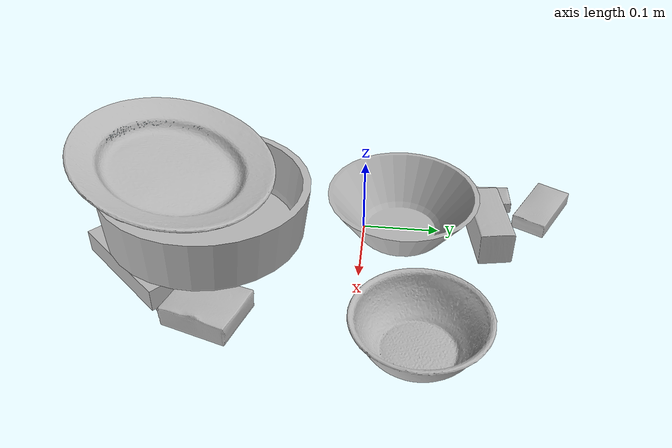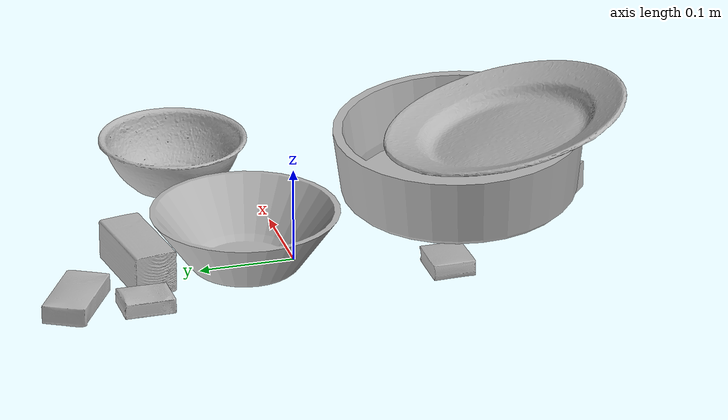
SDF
<sdf version="1.4">
  <world name="default">
    <light name="light1" type="point">
      <pose>0 0 1 0 0 0</pose>
      <diffuse>3 3 3 1</diffuse>
      <specular>3 3 3 1</specular>
    </light>
    <light name="light2" type="point">
      <pose>0 0.5 2 0 0 0</pose>
      <diffuse>1 1 1 1</diffuse>
      <specular>1 1 1 1</specular>
    </light>
    <light name="light3" type="point">
      <pose>0 0.5 2 0 0 0</pose>
      <diffuse>3 3 3 1</diffuse>
      <specular>3 3 3 1</specular>
    </light>
    <scene>
      <ambient>0.7 0.7 0.7</ambient>
    </scene>
    <model name="box1">
      <link name="link_box1">
        <collision name="default">
          <geometry>
            <mesh>
              <uri>model://jenga/collision_meshes/collision.obj</uri>
              <scale>1.0 1.0 1.0</scale>
            </mesh>
          </geometry>
          <surface>
            <friction>
              <ode>
                <mu>0.5</mu>
                <mu2>0.5</mu2>
              </ode>
            </friction>
          <contact>
        <ode>
            <max_vel>0</max_vel>
            <min_depth>0.0001</min_depth>
            <kp>1e8</kp>
        </ode>
    </contact></surface>
        </collision>
        <visual name="default">
          <geometry>
            <mesh>
              <uri>model://jenga/visual_meshes/visual.dae</uri>
              <scale>1.0 1.0 1.0</scale>
            </mesh>
          </geometry>
        </visual>
        <inertial>
          <mass>0.21843092143535614</mass>
          <pose>-2.502855807051674e-07 -0.00010250011109746993 -4.092339804628864e-05 0.0 -7.342154049184251e-07 0.0</pose>
          <inertia>
            <ixx>6.0445138e-05</ixx>
            <iyy>0.0004095746</iyy>
            <izz>0.00043725572</izz>
            <ixy>0</ixy>
            <ixz>0</ixz>
            <iyz>0</iyz>
          </inertia>
        </inertial>
      </link>
      <pose>0.11893003433942795 -0.2759746015071869 0.01500124391168356 0.0001394965550039488 -1.5990040972423662e-06 -2.316778445952206</pose>
    </model>
    <model name="box11">
      <link name="link_box11">
        <collision name="default">
          <geometry>
            <mesh>
              <uri>model://pudding_box/collision_meshes/collision.obj</uri>
              <scale>0.5 0.5 0.5</scale>
            </mesh>
          </geometry>
          <surface>
            <friction>
              <ode>
                <mu>0.5</mu>
                <mu2>0.5</mu2>
              </ode>
            </friction>
          <contact>
        <ode>
            <max_vel>0</max_vel>
            <min_depth>0.0001</min_depth>
            <kp>1e8</kp>
        </ode>
    </contact></surface>
        </collision>
        <visual name="default">
          <geometry>
            <mesh>
              <uri>model://pudding_box/visual_meshes/visual.dae</uri>
              <scale>0.5 0.5 0.5</scale>
            </mesh>
          </geometry>
        </visual>
        <inertial>
          <mass>0.04130476340651512</mass>
          <pose>0.00024474109522998333 0.00040339428232982755 -0.0002594413817860186 0.005213101341234124 -0.006603795469139562 0.020079830758209564</pose>
          <inertia>
            <ixx>1.1673226e-05</ixx>
            <iyy>7.85383e-06</iyy>
            <izz>1.723857e-05</izz>
            <ixy>0</ixy>
            <ixz>0</ixz>
            <iyz>0</iyz>
          </inertia>
        </inertial>
      </link>
      <pose>-0.06862971186637878 -0.14425979554653168 0.011053449474275112 -0.0632609644920789 -0.00800482845145009 -1.6010795928846528</pose>
    </model>
    <model name="box2">
      <link name="link_box2">
        <collision name="default">
          <geometry>
            <mesh>
              <uri>model://gelatin_box/collision_meshes/collision.obj</uri>
              <scale>1.0 1.0 1.0</scale>
            </mesh>
          </geometry>
          <surface>
            <friction>
              <ode>
                <mu>0.5</mu>
                <mu2>0.5</mu2>
              </ode>
            </friction>
          <contact>
        <ode>
            <max_vel>0</max_vel>
            <min_depth>0.0001</min_depth>
            <kp>1e8</kp>
        </ode>
    </contact></surface>
        </collision>
        <visual name="default">
          <geometry>
            <mesh>
              <uri>model://gelatin_box/visual_meshes/visual.dae</uri>
              <scale>1.0 1.0 1.0</scale>
            </mesh>
          </geometry>
        </visual>
        <inertial>
          <mass>0.24153950810432434</mass>
          <pose>0.0004319618456065655 0.00011156871914863586 -0.0003640321083366871 -0.001050371984258798 -0.004755819621622892 0.016440559472145032</pose>
          <inertia>
            <ixx>0.00017050719</ixx>
            <iyy>0.00012179239</iyy>
            <izz>0.0002595499</izz>
            <ixy>0</ixy>
            <ixz>0</ixz>
            <iyz>0</iyz>
          </inertia>
        </inertial>
      </link>
      <pose>0.1898023933172226 -0.17072807252407074 0.015433640219271183 0.0016274644256394058 -0.01947353739640718 -0.31736387699768864</pose>
    </model>
    <model name="box21">
      <link name="link_box21">
        <collision name="default">
          <geometry>
            <mesh>
              <uri>model://cracker_box/collision_meshes/collision.obj</uri>
              <scale>0.25 0.25 0.25</scale>
            </mesh>
          </geometry>
          <surface>
            <friction>
              <ode>
                <mu>0.5</mu>
                <mu2>0.5</mu2>
              </ode>
            </friction>
          <contact>
        <ode>
            <max_vel>0</max_vel>
            <min_depth>0.0001</min_depth>
            <kp>1e8</kp>
        </ode>
    </contact></surface>
        </collision>
        <visual name="default">
          <geometry>
            <mesh>
              <uri>model://cracker_box/visual_meshes/visual.dae</uri>
              <scale>0.25 0.25 0.25</scale>
            </mesh>
          </geometry>
        </visual>
        <inertial>
          <mass>0.04855586588382721</mass>
          <pose>0.00023660322767682374 6.358561222441494e-05 -0.00042573834070935845 -0.00031620783521113603 -0.01110649053142329 0.0025467954689779603</pose>
          <inertia>
            <ixx>7.719027e-06</ixx>
            <iyy>1.2745631e-05</iyy>
            <izz>1.8189185e-05</izz>
            <ixy>0</ixy>
            <ixz>0</ixz>
            <iyz>0</iyz>
          </inertia>
        </inertial>
      </link>
      <pose>-0.06672874093055725 0.17130006849765778 0.009120450355112553 -0.011788041869801598 -0.007367185534207681 1.6042087079099656</pose>
    </model>
    <model name="box3">
      <link name="link_box3">
        <collision name="default">
          <geometry>
            <mesh>
              <uri>model://wood_block/collision_meshes/collision.obj</uri>
              <scale>0.5 0.5 0.5</scale>
            </mesh>
          </geometry>
          <surface>
            <friction>
              <ode>
                <mu>0.5</mu>
                <mu2>0.5</mu2>
              </ode>
            </friction>
          <contact>
        <ode>
            <max_vel>0</max_vel>
            <min_depth>0.0001</min_depth>
            <kp>1e8</kp>
        </ode>
    </contact></surface>
        </collision>
        <visual name="default">
          <geometry>
            <mesh>
              <uri>model://wood_block/visual_meshes/visual.dae</uri>
              <scale>0.5 0.5 0.5</scale>
            </mesh>
          </geometry>
        </visual>
        <inertial>
          <mass>0.17342756688594818</mass>
          <pose>-2.906657982748584e-06 -0.000285404734313488 0.00013204291462898254 -0.052208426481931185 -0.005192696107352816 -0.006861379630616638</pose>
          <inertia>
            <ixx>5.8018082e-05</ixx>
            <iyy>0.00018327912</iyy>
            <izz>0.00018259356</izz>
            <ixy>0</ixy>
            <ixz>0</ixz>
            <iyz>0</iyz>
          </inertia>
        </inertial>
      </link>
      <pose>0.008625941351056099 0.16223876178264618 0.022629262879490852 -0.005208479087087733 0.005718668281980412 -2.9766925100951296</pose>
    </model>
    <model name="box31">
      <link name="link_box31">
        <collision name="default">
          <geometry>
            <mesh>
              <uri>model://sugar_box/collision_meshes/collision.obj</uri>
              <scale>0.5 0.5 0.5</scale>
            </mesh>
          </geometry>
          <surface>
            <friction>
              <ode>
                <mu>0.5</mu>
                <mu2>0.5</mu2>
              </ode>
            </friction>
          <contact>
        <ode>
            <max_vel>0</max_vel>
            <min_depth>0.0001</min_depth>
            <kp>1e8</kp>
        </ode>
    </contact></surface>
        </collision>
        <visual name="default">
          <geometry>
            <mesh>
              <uri>model://sugar_box/visual_meshes/visual.dae</uri>
              <scale>0.5 0.5 0.5</scale>
            </mesh>
          </geometry>
        </visual>
        <inertial>
          <mass>0.102778859436512</mass>
          <pose>0.0005171863595023751 1.924554817378521e-05 -0.00018182402709499002 -0.00040462592244169 0.0010506634051582892 0.0026153783234817013</pose>
          <inertia>
            <ixx>2.1408765e-05</ixx>
            <iyy>6.919753e-05</iyy>
            <izz>8.2837694e-05</izz>
            <ixy>0</ixy>
            <ixz>0</ixz>
            <iyz>0</iyz>
          </inertia>
        </inertial>
      </link>
      <pose>-0.04678890109062195 0.23781223595142365 0.011399302631616592 0.0007759435233233599 -0.02343281851852172 2.641774865173524</pose>
    </model>
    <model name="plate1">
      <link name="link_plate1">
        <collision name="default">
          <geometry>
            <mesh>
              <uri>model://pan_tefal/collision_meshes/collision.obj</uri>
              <scale>1.0 1.0 1.0</scale>
            </mesh>
          </geometry>
          <surface>
            <friction>
              <ode>
                <mu>0.5</mu>
                <mu2>0.5</mu2>
              </ode>
            </friction>
          <contact>
        <ode>
            <max_vel>0</max_vel>
            <min_depth>0.0001</min_depth>
            <kp>1e8</kp>
        </ode>
    </contact></surface>
        </collision>
        <visual name="default">
          <geometry>
            <mesh>
              <uri>model://pan_tefal/visual_meshes/visual.dae</uri>
              <scale>1.0 1.0 1.0</scale>
            </mesh>
          </geometry>
        </visual>
        <inertial>
          <mass>1.4199398756027222</mass>
          <pose>-0.00018002341676037759 3.278919029980898e-05 -0.00851493515074253 0.0008190238651519852 -0.0003301374854212985 -0.3318555266382279</pose>
          <inertia>
            <ixx>0.009801778</ixx>
            <iyy>0.009864969</iyy>
            <izz>0.01804318</izz>
            <ixy>0</ixy>
            <ixz>0</ixz>
            <iyz>0</iyz>
          </inertia>
        </inertial>
      </link>
      <pose>0.061206378042697906 -0.19734705984592438 0.06367231160402298 0.000913988478452088 -0.06230802651319079 -0.7390504255643955</pose>
    </model>
    <model name="bowl1">
      <link name="link_bowl1">
        <collision name="default">
          <geometry>
            <mesh>
              <uri>model://bowl/collision_meshes/collision.obj</uri>
              <scale>1.0 1.0 1.0</scale>
            </mesh>
          </geometry>
          <surface>
            <friction>
              <ode>
                <mu>0.5</mu>
                <mu2>0.5</mu2>
              </ode>
            </friction>
          <contact>
        <ode>
            <max_vel>0</max_vel>
            <min_depth>0.0001</min_depth>
            <kp>1e8</kp>
        </ode>
    </contact></surface>
        </collision>
        <visual name="default">
          <geometry>
            <mesh>
              <uri>model://bowl/visual_meshes/visual.dae</uri>
              <scale>1.0 1.0 1.0</scale>
            </mesh>
          </geometry>
        </visual>
        <inertial>
          <mass>0.10393582284450531</mass>
          <pose>0.00020445296831894666 -0.001030207728035748 -0.0008042644476518035 -0.01576405922653839 0.014546845721322095 0.7140430703653545</pose>
          <inertia>
            <ixx>0.00023874876</ixx>
            <iyy>0.00023341418</iyy>
            <izz>0.00040165734</izz>
            <ixy>0</ixy>
            <ixz>0</ixz>
            <iyz>0</iyz>
          </inertia>
        </inertial>
      </link>
      <pose>0.2190423309803009 0.07587428390979767 0.027780015021562576 -1.720988798925839e-08 9.078735543937932e-08 2.453185443098943</pose>
    </model>
    <model name="plate2">
      <link name="link_plate2">
        <collision name="default">
          <geometry>
            <mesh>
              <uri>model://plate/collision_meshes/collision.obj</uri>
              <scale>1.0 1.0 1.0</scale>
            </mesh>
          </geometry>
          <surface>
            <friction>
              <ode>
                <mu>0.5</mu>
                <mu2>0.5</mu2>
              </ode>
            </friction>
          <contact>
        <ode>
            <max_vel>0</max_vel>
            <min_depth>0.0001</min_depth>
            <kp>1e8</kp>
        </ode>
    </contact></surface>
        </collision>
        <visual name="default">
          <geometry>
            <mesh>
              <uri>model://plate/visual_meshes/visual.dae</uri>
              <scale>1.0 1.0 1.0</scale>
            </mesh>
          </geometry>
        </visual>
        <inertial>
          <mass>0.11643410474061966</mass>
          <pose>-0.0006044629844836891 0.000278257648460567 -0.001056199660524726 0.0022187586917557377 -0.0032254970862864826 0.45261837235677477</pose>
          <inertia>
            <ixx>0.00054468104</ixx>
            <iyy>0.0005394714</iyy>
            <izz>0.0010653147</izz>
            <ixy>0</ixy>
            <ixz>0</ixz>
            <iyz>0</iyz>
          </inertia>
        </inertial>
      </link>
      <pose>0.03614833578467369 -0.24146777391433716 0.10604534298181534 0.1758300745246693 0.15708613198098423 2.209093039405924</pose>
    </model>
    <model name="bowl2">
      <link name="link_bowl2">
        <collision name="default">
          <geometry>
            <mesh>
              <uri>model://bowl_a/collision_meshes/collision.obj</uri>
              <scale>1.0 1.0 1.0</scale>
            </mesh>
          </geometry>
          <surface>
            <friction>
              <ode>
                <mu>0.5</mu>
                <mu2>0.5</mu2>
              </ode>
            </friction>
          <contact>
        <ode>
            <max_vel>0</max_vel>
            <min_depth>0.0001</min_depth>
            <kp>1e8</kp>
        </ode>
    </contact></surface>
        </collision>
        <visual name="default">
          <geometry>
            <mesh>
              <uri>model://bowl_a/visual_meshes/visual.dae</uri>
              <scale>1.0 1.0 1.0</scale>
            </mesh>
          </geometry>
        </visual>
        <inertial>
          <mass>0.4875580668449402</mass>
          <pose>0.00027867365861311555 4.73092841275502e-05 -0.0013765289913862944 -0.0009805446644095745 -0.0010938154105800495 -0.1912289991244328</pose>
          <inertia>
            <ixx>0.0013881001</ixx>
            <iyy>0.0013966226</iyy>
            <izz>0.0024687892</izz>
            <ixy>0</ixy>
            <ixz>0</ixz>
            <iyz>0</iyz>
          </inertia>
        </inertial>
      </link>
      <pose>0.0036549086216837168 0.05026152729988098 0.030383002012968063 -3.81377679076072e-08 7.085128817621997e-08 -1.9048660374399153</pose>
    </model>
  <physics type="ode">
      <max_contacts>50</max_contacts>
      <ode>
        <solver>
          <type>quick</type>
          <iters>75</iters>
        </solver>
        <constraints>
          <contact_max_correcting_vel>0</contact_max_correcting_vel>
          <contact_surface_layer>0</contact_surface_layer>
        </constraints>
      </ode>
    </physics></world>
</sdf>
